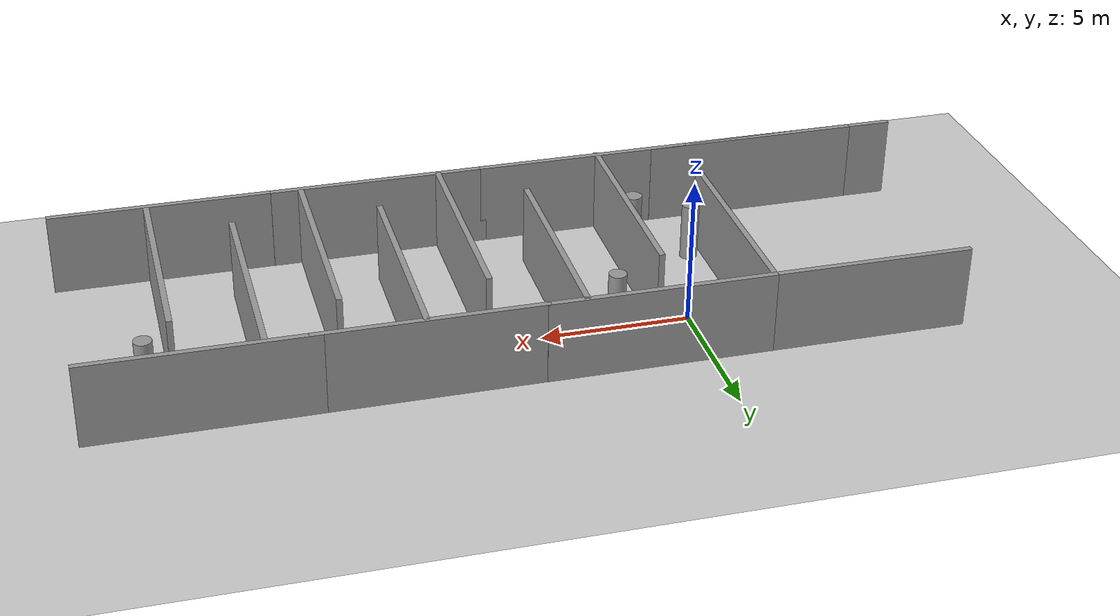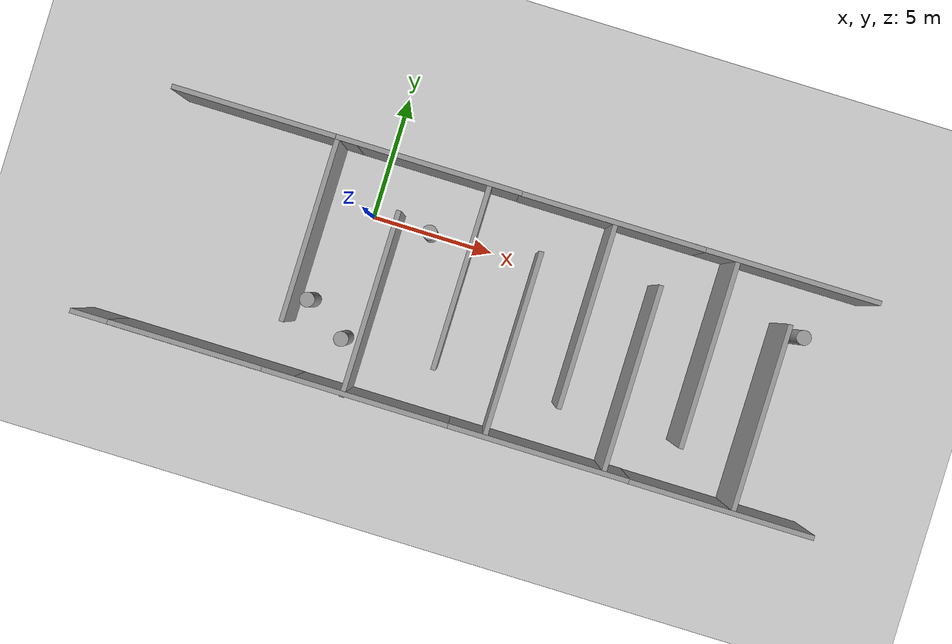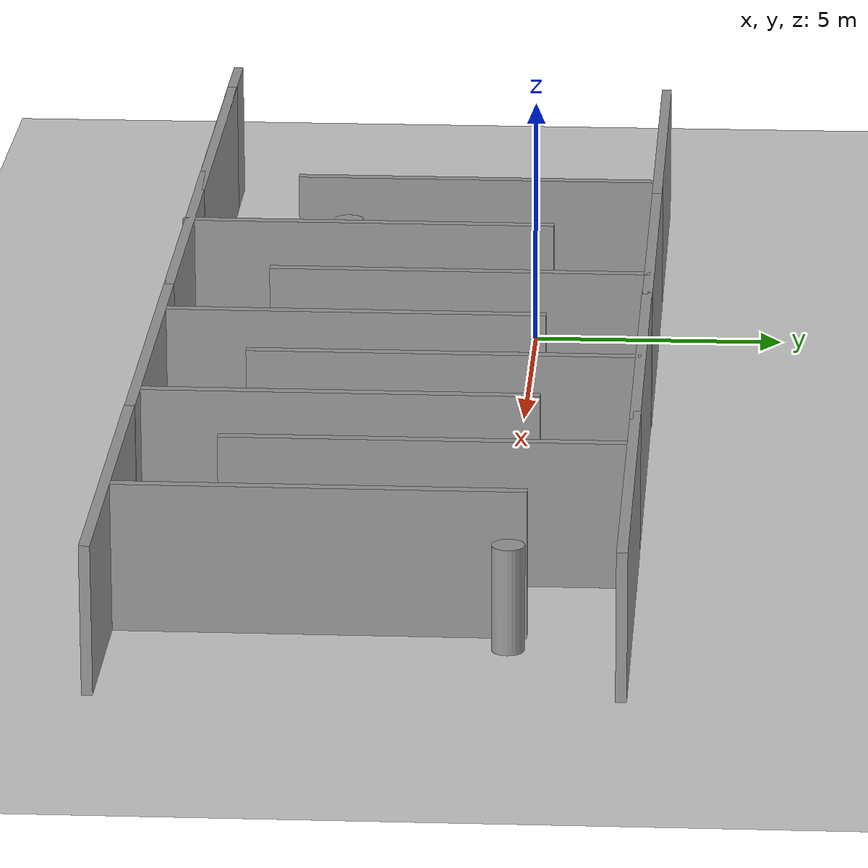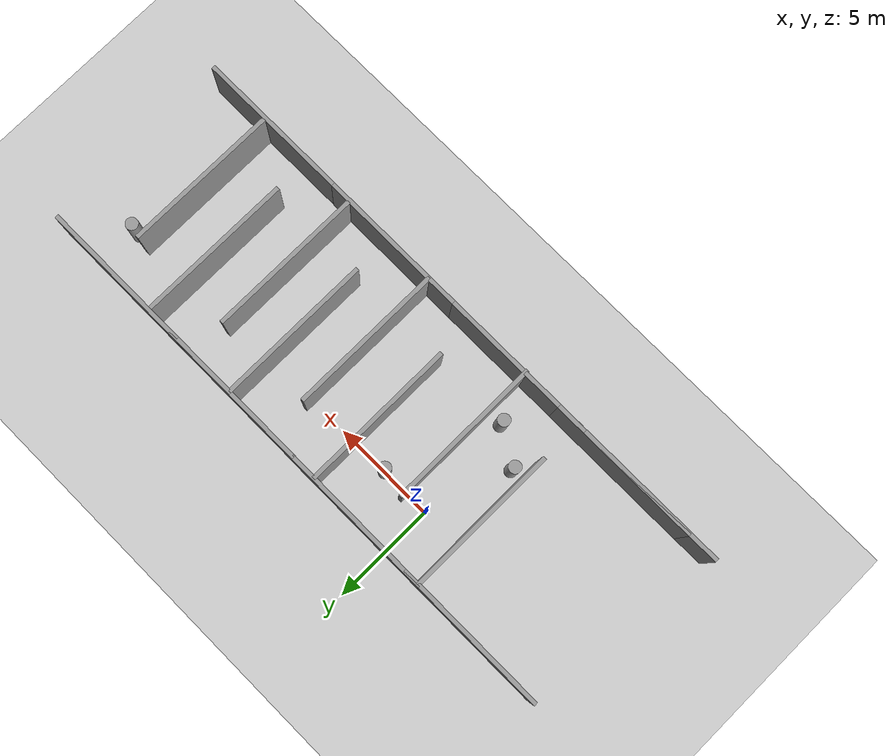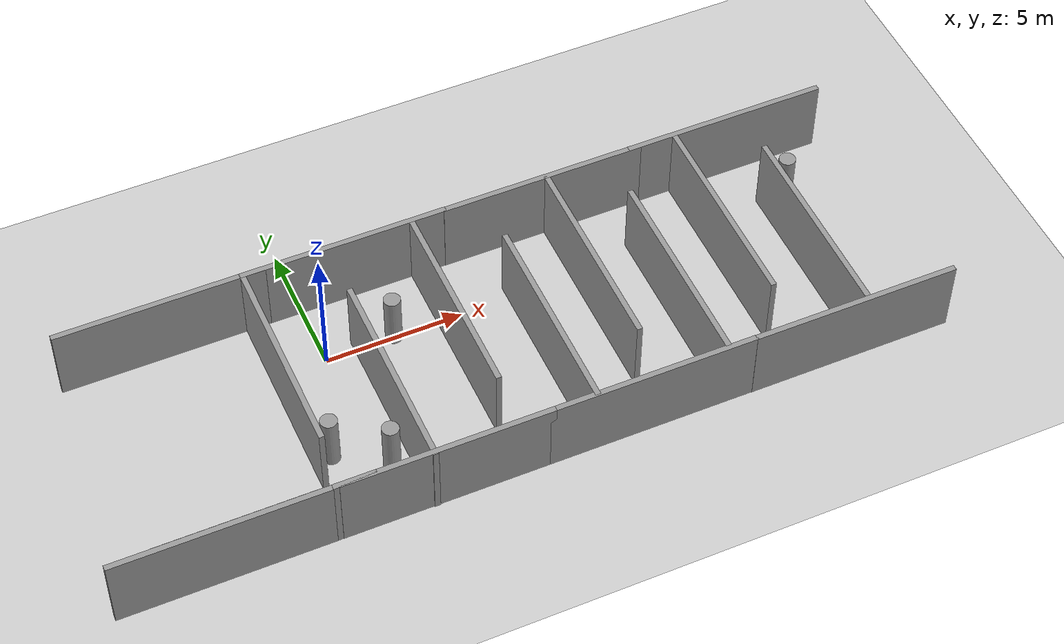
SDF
<sdf version="1.7">
 <world name="default">
  <light name="sun" type="directional">
   <cast_shadows>0</cast_shadows>
   <pose>0 0 10 0 -0 0</pose>
   <diffuse>0.8 0.8 0.8 1</diffuse>
   <specular>0.2 0.2 0.2 1</specular>
   <attenuation>
    <range>1000</range>
    <constant>0.9</constant>
    <linear>0.01</linear>
    <quadratic>0.001</quadratic>
   </attenuation>
   <direction>-0.5 0.1 -0.9</direction>
   <spot><inner_angle>0</inner_angle><outer_angle>0</outer_angle><falloff>0</falloff></spot>
  </light>
  <model name="ground_plane">
   <static>1</static>
   <link name="link">
    <collision name="collision">
     <geometry><plane><normal>0 0 1</normal><size>200 200</size></plane></geometry>
     <surface><friction><ode><mu>100</mu><mu2>50</mu2></ode></friction></surface>
    </collision>
    <visual name="visual">
     <cast_shadows>0</cast_shadows>
     <geometry><plane><normal>0 0 1</normal><size>200 200</size></plane></geometry>
     <material>
      <script><uri>file://media/materials/scripts/gazebo.material</uri><name>Gazebo/Grey</name></script>
     </material>
    </visual>
   </link>
  </model>
  <physics name="default_physics" default="0" type="ode">
   <max_step_size>0.001</max_step_size>
   <real_time_factor>1</real_time_factor>
   <real_time_update_rate>1000</real_time_update_rate>
  </physics>
  <scene><ambient>0.4 0.4 0.4 1</ambient><background>0.7 0.7 0.7 1</background><shadows>0</shadows></scene>
  <spherical_coordinates>
   <surface_model>EARTH_WGS84</surface_model>
   <latitude_deg>0</latitude_deg>
   <longitude_deg>0</longitude_deg>
   <elevation>0</elevation>
   <heading_deg>0</heading_deg>
  </spherical_coordinates>
  <gravity>0 0 -9.8</gravity>
  <magnetic_field>6e-06 2.3e-05 -4.2e-05</magnetic_field>
  <atmosphere type="adiabatic"/>
  <audio><device>default</device></audio>
  <model name="grey_wall">
   <static>1</static>
   <link name="link">
    <pose>0 0 1.4 0 -0 0</pose>
    <collision name="collision"><geometry><box><size>7.5 0.2 2.8</size></box></geometry></collision>
    <visual name="visual">
     <cast_shadows>0</cast_shadows>
     <geometry><box><size>7.5 0.2 2.8</size></box></geometry>
     <material>
      <script>
       <uri>model://grey_wall/materials/scripts</uri>
       <uri>model://grey_wall/materials/textures</uri>
       <name>vrc/grey_wall</name>
      </script>
     </material>
    </visual>
   </link>
   <pose>1.72512 2.41837 0 0 -0 0</pose>
  </model>
  <model name="grey_wall_clone">
   <static>1</static>
   <link name="link">
    <pose>0 0 1.4 0 -0 0</pose>
    <collision name="collision"><geometry><box><size>7.5 0.2 2.8</size></box></geometry></collision>
    <visual name="visual">
     <cast_shadows>0</cast_shadows>
     <geometry><box><size>7.5 0.2 2.8</size></box></geometry>
     <material>
      <script>
       <uri>model://grey_wall/materials/scripts</uri>
       <uri>model://grey_wall/materials/textures</uri>
       <name>vrc/grey_wall</name>
      </script>
     </material>
    </visual>
   </link>
   <pose>9.12125 2.40683 0 0 -0 0</pose>
  </model>
  <model name="grey_wall_clone_clone">
   <static>1</static>
   <link name="link">
    <pose>0 0 1.4 0 -0 0</pose>
    <collision name="collision"><geometry><box><size>7.5 0.2 2.8</size></box></geometry></collision>
    <visual name="visual">
     <cast_shadows>0</cast_shadows>
     <geometry><box><size>7.5 0.2 2.8</size></box></geometry>
     <material>
      <script>
       <uri>model://grey_wall/materials/scripts</uri>
       <uri>model://grey_wall/materials/textures</uri>
       <name>vrc/grey_wall</name>
      </script>
     </material>
    </visual>
   </link>
   <pose>-1.94422 -1.24004 0 0 0 -1.57368</pose>
  </model>
  <model name="grey_wall_clone_0">
   <static>1</static>
   <link name="link">
    <pose>0 0 1.4 0 -0 0</pose>
    <collision name="collision"><geometry><box><size>7.5 0.2 2.8</size></box></geometry></collision>
    <visual name="visual">
     <cast_shadows>0</cast_shadows>
     <geometry><box><size>7.5 0.2 2.8</size></box></geometry>
     <material>
      <script>
       <uri>model://grey_wall/materials/scripts</uri>
       <uri>model://grey_wall/materials/textures</uri>
       <name>vrc/grey_wall</name>
      </script>
     </material>
    </visual>
   </link>
   <pose>1.59238 -6.95967 0 0 -0 0</pose>
  </model>
  <model name="grey_wall_clone_1">
   <static>1</static>
   <link name="link">
    <pose>0 0 1.4 0 -0 0</pose>
    <collision name="collision"><geometry><box><size>7.5 0.2 2.8</size></box></geometry></collision>
    <visual name="visual">
     <cast_shadows>0</cast_shadows>
     <geometry><box><size>7.5 0.2 2.8</size></box></geometry>
     <material>
      <script>
       <uri>model://grey_wall/materials/scripts</uri>
       <uri>model://grey_wall/materials/textures</uri>
       <name>vrc/grey_wall</name>
      </script>
     </material>
    </visual>
   </link>
   <pose>8.8831 -6.95967 0 0 -0 0</pose>
  </model>
  <model name="grey_wall_clone_clone_clone">
   <static>1</static>
   <link name="link">
    <pose>0 0 1.4 0 -0 0</pose>
    <collision name="collision"><geometry><box><size>7.5 0.2 2.8</size></box></geometry></collision>
    <visual name="visual">
     <cast_shadows>0</cast_shadows>
     <geometry><box><size>7.5 0.2 2.8</size></box></geometry>
     <material>
      <script>
       <uri>model://grey_wall/materials/scripts</uri>
       <uri>model://grey_wall/materials/textures</uri>
       <name>vrc/grey_wall</name>
      </script>
     </material>
    </visual>
   </link>
   <pose>1.11979 -3.34384 0 0 0 -1.57368</pose>
  </model>
  <model name="grey_wall_clone_clone_clone_0">
   <static>1</static>
   <link name="link">
    <pose>0 0 1.4 0 -0 0</pose>
    <collision name="collision"><geometry><box><size>7.5 0.2 2.8</size></box></geometry></collision>
    <visual name="visual">
     <cast_shadows>0</cast_shadows>
     <geometry><box><size>7.5 0.2 2.8</size></box></geometry>
     <material>
      <script>
       <uri>model://grey_wall/materials/scripts</uri>
       <uri>model://grey_wall/materials/textures</uri>
       <name>vrc/grey_wall</name>
      </script>
     </material>
    </visual>
   </link>
   <pose>4.18138 -1.3253 0 0 0 -1.57368</pose>
  </model>
  <model name="grey_wall_clone_clone_clone_1">
   <static>1</static>
   <link name="link">
    <pose>0 0 1.4 0 -0 0</pose>
    <collision name="collision"><geometry><box><size>7.5 0.2 2.8</size></box></geometry></collision>
    <visual name="visual">
     <cast_shadows>0</cast_shadows>
     <geometry><box><size>7.5 0.2 2.8</size></box></geometry>
     <material>
      <script>
       <uri>model://grey_wall/materials/scripts</uri>
       <uri>model://grey_wall/materials/textures</uri>
       <name>vrc/grey_wall</name>
      </script>
     </material>
    </visual>
   </link>
   <pose>6.83765 -3.24412 0 0 0 -1.57368</pose>
  </model>
  <model name="grey_wall_clone_clone_clone_2">
   <static>1</static>
   <link name="link">
    <pose>0 0 1.4 0 -0 0</pose>
    <collision name="collision"><geometry><box><size>7.5 0.2 2.8</size></box></geometry></collision>
    <visual name="visual">
     <cast_shadows>0</cast_shadows>
     <geometry><box><size>7.5 0.2 2.8</size></box></geometry>
     <material>
      <script>
       <uri>model://grey_wall/materials/scripts</uri>
       <uri>model://grey_wall/materials/textures</uri>
       <name>vrc/grey_wall</name>
      </script>
     </material>
    </visual>
   </link>
   <pose>9.25262 -1.34357 0 0 0 -1.57368</pose>
  </model>
  <model name="grey_wall_clone_clone_clone_3">
   <static>1</static>
   <link name="link">
    <pose>0 0 1.4 0 -0 0</pose>
    <collision name="collision"><geometry><box><size>7.5 0.2 2.8</size></box></geometry></collision>
    <visual name="visual">
     <cast_shadows>0</cast_shadows>
     <geometry><box><size>7.5 0.2 2.8</size></box></geometry>
     <material>
      <script>
       <uri>model://grey_wall/materials/scripts</uri>
       <uri>model://grey_wall/materials/textures</uri>
       <name>vrc/grey_wall</name>
      </script>
     </material>
    </visual>
   </link>
   <pose>11.617 -3.14166 0 0 0 -1.57368</pose>
  </model>
  <model name="grey_wall_clone_1_clone">
   <static>1</static>
   <link name="link">
    <pose>0 0 1.4 0 -0 0</pose>
    <collision name="collision"><geometry><box><size>7.5 0.2 2.8</size></box></geometry></collision>
    <visual name="visual">
     <cast_shadows>0</cast_shadows>
     <geometry><box><size>7.5 0.2 2.8</size></box></geometry>
     <material>
      <script>
       <uri>model://grey_wall/materials/scripts</uri>
       <uri>model://grey_wall/materials/textures</uri>
       <name>vrc/grey_wall</name>
      </script>
     </material>
    </visual>
   </link>
   <pose>16.3392 -6.96835 0 0 -0 0</pose>
  </model>
  <model name="grey_wall_clone_1_clone_0">
   <static>1</static>
   <link name="link">
    <pose>0 0 1.4 0 -0 0</pose>
    <collision name="collision"><geometry><box><size>7.5 0.2 2.8</size></box></geometry></collision>
    <visual name="visual">
     <cast_shadows>0</cast_shadows>
     <geometry><box><size>7.5 0.2 2.8</size></box></geometry>
     <material>
      <script>
       <uri>model://grey_wall/materials/scripts</uri>
       <uri>model://grey_wall/materials/textures</uri>
       <name>vrc/grey_wall</name>
      </script>
     </material>
    </visual>
   </link>
   <pose>-4.60298 -6.9535 0 0 -0 0</pose>
  </model>
  <model name="grey_wall_clone_1_clone_2">
   <static>1</static>
   <link name="link">
    <pose>0 0 1.4 0 -0 0</pose>
    <collision name="collision"><geometry><box><size>7.5 0.2 2.8</size></box></geometry></collision>
    <visual name="visual">
     <cast_shadows>0</cast_shadows>
     <geometry><box><size>7.5 0.2 2.8</size></box></geometry>
     <material>
      <script>
       <uri>model://grey_wall/materials/scripts</uri>
       <uri>model://grey_wall/materials/textures</uri>
       <name>vrc/grey_wall</name>
      </script>
     </material>
    </visual>
   </link>
   <pose>16.1733 2.41046 0 0 -0 0</pose>
  </model>
  <model name="grey_wall_clone_clone_clone_3_clone">
   <static>1</static>
   <link name="link">
    <pose>0 0 1.4 0 -0 0</pose>
    <collision name="collision"><geometry><box><size>7.5 0.2 2.8</size></box></geometry></collision>
    <visual name="visual">
     <cast_shadows>0</cast_shadows>
     <geometry><box><size>7.5 0.2 2.8</size></box></geometry>
     <material>
      <script>
       <uri>model://grey_wall/materials/scripts</uri>
       <uri>model://grey_wall/materials/textures</uri>
       <name>vrc/grey_wall</name>
      </script>
     </material>
    </visual>
   </link>
   <pose>14.1827 -1.43052 0 0 0 -1.57368</pose>
  </model>
  <model name="grey_wall_clone_clone_clone_3_clone_0">
   <static>1</static>
   <link name="link">
    <pose>0 0 1.4 0 -0 0</pose>
    <collision name="collision"><geometry><box><size>7.5 0.2 2.8</size></box></geometry></collision>
    <visual name="visual">
     <cast_shadows>0</cast_shadows>
     <geometry><box><size>7.5 0.2 2.8</size></box></geometry>
     <material>
      <script>
       <uri>model://grey_wall/materials/scripts</uri>
       <uri>model://grey_wall/materials/textures</uri>
       <name>vrc/grey_wall</name>
      </script>
     </material>
    </visual>
   </link>
   <pose>16.8246 -3.13378 0 0 0 -1.57368</pose>
  </model>
  <model name="grey_wall_clone_2">
   <static>1</static>
   <link name="link">
    <pose>0 0 1.4 0 -0 0</pose>
    <collision name="collision"><geometry><box><size>7.5 0.2 2.8</size></box></geometry></collision>
    <visual name="visual">
     <cast_shadows>0</cast_shadows>
     <geometry><box><size>7.5 0.2 2.8</size></box></geometry>
     <material>
      <script>
       <uri>model://grey_wall/materials/scripts</uri>
       <uri>model://grey_wall/materials/textures</uri>
       <name>vrc/grey_wall</name>
      </script>
     </material>
    </visual>
   </link>
   <pose>-4.87717 2.41595 0 0 -0 0</pose>
  </model>
  <model name="unit_cylinder">
   <link name="link">
    <inertial>
     <mass>3.01988</mass>
     <inertia><ixx>1.33707</ixx><ixy>0</ixy><ixz>0</ixz><iyy>1.33707</iyy><iyz>0</iyz><izz>0.377485</izz></inertia>
    </inertial>
    <pose>0 0 -2.5 0 -0 0</pose>
    <visual name="visual">
     <geometry><cylinder><radius>0.3</radius><length>2</length></cylinder></geometry>
     <material>
      <script><name>Gazebo/Grey</name><uri>file://media/materials/scripts/gazebo.material</uri></script>
      <shader type="pixel"><normal_map>__default__</normal_map></shader>
      <ambient>0.3 0.3 0.3 1</ambient>
      <diffuse>0.7 0.7 0.7 1</diffuse>
      <specular>0.01 0.01 0.01 1</specular>
      <emissive>0 0 0 1</emissive>
     </material>
    </visual>
    <collision name="collision">
     <geometry><cylinder><radius>0.5</radius><length>2.13613</length></cylinder></geometry>
     <surface>
      <friction>
       <ode><mu>1</mu><mu2>1</mu2><fdir1>0 0 0</fdir1><slip1>0</slip1><slip2>0</slip2></ode>
       <torsional>
        <coefficient>1</coefficient>
        <patch_radius>0</patch_radius>
        <surface_radius>0</surface_radius>
        <use_patch_radius>1</use_patch_radius>
        <ode><slip>0</slip></ode>
       </torsional>
      </friction>
      <bounce><restitution_coefficient>0</restitution_coefficient><threshold>1e+06</threshold></bounce>
      <contact>
       <collide_without_contact>0</collide_without_contact>
       <collide_without_contact_bitmask>1</collide_without_contact_bitmask>
       <collide_bitmask>1</collide_bitmask>
       <ode>
        <soft_cfm>0</soft_cfm>
        <soft_erp>0.2</soft_erp>
        <kp>1e+13</kp>
        <kd>1</kd>
        <max_vel>0.01</max_vel>
        <min_depth>0</min_depth>
       </ode>
       <bullet>
        <split_impulse>1</split_impulse>
        <split_impulse_penetration_threshold>-0.01</split_impulse_penetration_threshold>
        <soft_cfm>0</soft_cfm>
        <soft_erp>0.2</soft_erp>
        <kp>1e+13</kp>
        <kd>1</kd>
       </bullet>
      </contact>
     </surface>
    </collision>
   </link>
   <static>0</static>
   <pose>0.364029 -5.01799 3.56806 0 -0 0.000707</pose>
  </model>
  <model name="unit_cylinder_clone">
   <link name="link">
    <inertial>
     <mass>3.01988</mass>
     <inertia><ixx>1.33707</ixx><ixy>0</ixy><ixz>0</ixz><iyy>1.33707</iyy><iyz>0</iyz><izz>0.377485</izz></inertia>
    </inertial>
    <pose>0 0 -2.5 0 -0 0</pose>
    <visual name="visual">
     <geometry><cylinder><radius>0.3</radius><length>2</length></cylinder></geometry>
     <material>
      <script><name>Gazebo/Grey</name><uri>file://media/materials/scripts/gazebo.material</uri></script>
      <shader type="pixel"><normal_map>__default__</normal_map></shader>
      <ambient>0.3 0.3 0.3 1</ambient>
      <diffuse>0.7 0.7 0.7 1</diffuse>
      <specular>0.01 0.01 0.01 1</specular>
      <emissive>0 0 0 1</emissive>
     </material>
    </visual>
    <collision name="collision">
     <geometry><cylinder><radius>0.5</radius><length>2.13613</length></cylinder></geometry>
     <surface>
      <friction>
       <ode><mu>1</mu><mu2>1</mu2><fdir1>0 0 0</fdir1><slip1>0</slip1><slip2>0</slip2></ode>
       <torsional>
        <coefficient>1</coefficient>
        <patch_radius>0</patch_radius>
        <surface_radius>0</surface_radius>
        <use_patch_radius>1</use_patch_radius>
        <ode><slip>0</slip></ode>
       </torsional>
      </friction>
      <bounce><restitution_coefficient>0</restitution_coefficient><threshold>1e+06</threshold></bounce>
      <contact>
       <collide_without_contact>0</collide_without_contact>
       <collide_without_contact_bitmask>1</collide_without_contact_bitmask>
       <collide_bitmask>1</collide_bitmask>
       <ode>
        <soft_cfm>0</soft_cfm>
        <soft_erp>0.2</soft_erp>
        <kp>1e+13</kp>
        <kd>1</kd>
        <max_vel>0.01</max_vel>
        <min_depth>0</min_depth>
       </ode>
       <bullet>
        <split_impulse>1</split_impulse>
        <split_impulse_penetration_threshold>-0.01</split_impulse_penetration_threshold>
        <soft_cfm>0</soft_cfm>
        <soft_erp>0.2</soft_erp>
        <kp>1e+13</kp>
        <kd>1</kd>
       </bullet>
      </contact>
     </surface>
    </collision>
   </link>
   <static>0</static>
   <pose>2.4632 -0.01686 3.56806 0 -0 0.000707</pose>
  </model>
  <model name="unit_cylinder_clone_clone">
   <link name="link">
    <inertial>
     <mass>3.01988</mass>
     <inertia><ixx>1.33707</ixx><ixy>0</ixy><ixz>0</ixz><iyy>1.33707</iyy><iyz>0</iyz><izz>0.377485</izz></inertia>
    </inertial>
    <pose>0 0 -2.5 0 -0 0</pose>
    <visual name="visual">
     <geometry><cylinder><radius>0.3</radius><length>2</length></cylinder></geometry>
     <material>
      <script><name>Gazebo/Grey</name><uri>file://media/materials/scripts/gazebo.material</uri></script>
      <shader type="pixel"><normal_map>__default__</normal_map></shader>
      <ambient>0.3 0.3 0.3 1</ambient>
      <diffuse>0.7 0.7 0.7 1</diffuse>
      <specular>0.01 0.01 0.01 1</specular>
      <emissive>0 0 0 1</emissive>
     </material>
    </visual>
    <collision name="collision">
     <geometry><cylinder><radius>0.5</radius><length>2.13613</length></cylinder></geometry>
     <surface>
      <friction>
       <ode><mu>1</mu><mu2>1</mu2><fdir1>0 0 0</fdir1><slip1>0</slip1><slip2>0</slip2></ode>
       <torsional>
        <coefficient>1</coefficient>
        <patch_radius>0</patch_radius>
        <surface_radius>0</surface_radius>
        <use_patch_radius>1</use_patch_radius>
        <ode><slip>0</slip></ode>
       </torsional>
      </friction>
      <bounce><restitution_coefficient>0</restitution_coefficient><threshold>1e+06</threshold></bounce>
      <contact>
       <collide_without_contact>0</collide_without_contact>
       <collide_without_contact_bitmask>1</collide_without_contact_bitmask>
       <collide_bitmask>1</collide_bitmask>
       <ode>
        <soft_cfm>0</soft_cfm>
        <soft_erp>0.2</soft_erp>
        <kp>1e+13</kp>
        <kd>1</kd>
        <max_vel>0.01</max_vel>
        <min_depth>0</min_depth>
       </ode>
       <bullet>
        <split_impulse>1</split_impulse>
        <split_impulse_penetration_threshold>-0.01</split_impulse_penetration_threshold>
        <soft_cfm>0</soft_cfm>
        <soft_erp>0.2</soft_erp>
        <kp>1e+13</kp>
        <kd>1</kd>
       </bullet>
      </contact>
     </surface>
    </collision>
   </link>
   <static>0</static>
   <pose>17.669 0.317473 3.56806 0 -0 0.000707</pose>
  </model>
  <plugin name="collision_map_creator" filename="libcollision_map_creator.so"/>
  <model name="unit_cylinder_clone_0">
   <link name="link">
    <inertial>
     <mass>3.01988</mass>
     <inertia><ixx>1.33707</ixx><ixy>0</ixy><ixz>0</ixz><iyy>1.33707</iyy><iyz>0</iyz><izz>0.377485</izz></inertia>
    </inertial>
    <pose>0 0 -2.5 0 -0 0</pose>
    <visual name="visual">
     <geometry><cylinder><radius>0.3</radius><length>2</length></cylinder></geometry>
     <material>
      <script><name>Gazebo/Grey</name><uri>file://media/materials/scripts/gazebo.material</uri></script>
      <shader type="pixel"><normal_map>__default__</normal_map></shader>
      <ambient>0.3 0.3 0.3 1</ambient>
      <diffuse>0.7 0.7 0.7 1</diffuse>
      <specular>0.01 0.01 0.01 1</specular>
      <emissive>0 0 0 1</emissive>
     </material>
    </visual>
    <collision name="collision">
     <geometry><cylinder><radius>0.5</radius><length>2.13613</length></cylinder></geometry>
     <surface>
      <friction>
       <ode><mu>1</mu><mu2>1</mu2><fdir1>0 0 0</fdir1><slip1>0</slip1><slip2>0</slip2></ode>
       <torsional>
        <coefficient>1</coefficient>
        <patch_radius>0</patch_radius>
        <surface_radius>0</surface_radius>
        <use_patch_radius>1</use_patch_radius>
        <ode><slip>0</slip></ode>
       </torsional>
      </friction>
      <bounce><restitution_coefficient>0</restitution_coefficient><threshold>1e+06</threshold></bounce>
      <contact>
       <collide_without_contact>0</collide_without_contact>
       <collide_without_contact_bitmask>1</collide_without_contact_bitmask>
       <collide_bitmask>1</collide_bitmask>
       <ode>
        <soft_cfm>0</soft_cfm>
        <soft_erp>0.2</soft_erp>
        <kp>1e+13</kp>
        <kd>1</kd>
        <max_vel>0.01</max_vel>
        <min_depth>0</min_depth>
       </ode>
       <bullet>
        <split_impulse>1</split_impulse>
        <split_impulse_penetration_threshold>-0.01</split_impulse_penetration_threshold>
        <soft_cfm>0</soft_cfm>
        <soft_erp>0.2</soft_erp>
        <kp>1e+13</kp>
        <kd>1</kd>
       </bullet>
      </contact>
     </surface>
    </collision>
   </link>
   <static>0</static>
   <pose>-1.35194 -3.92813 3.56806 0 -0 0.000799</pose>
  </model>
  <model name="grey_wall_clone_1_clone_0_clone">
   <static>1</static>
   <link name="link">
    <pose>0 0 1.4 0 -0 0</pose>
    <collision name="collision"><geometry><box><size>7.5 0.2 2.8</size></box></geometry></collision>
    <visual name="visual">
     <cast_shadows>0</cast_shadows>
     <geometry><box><size>7.5 0.2 2.8</size></box></geometry>
     <material>
      <script>
       <uri>model://grey_wall/materials/scripts</uri>
       <uri>model://grey_wall/materials/textures</uri>
       <name>vrc/grey_wall</name>
      </script>
     </material>
    </visual>
   </link>
   <pose>-6.10451 -6.95956 0 0 -0 0</pose>
  </model>
  <plugin name="ros_interface_plugin" filename="librotors_gazebo_ros_interface_plugin.so"/>
 </world>
</sdf>
